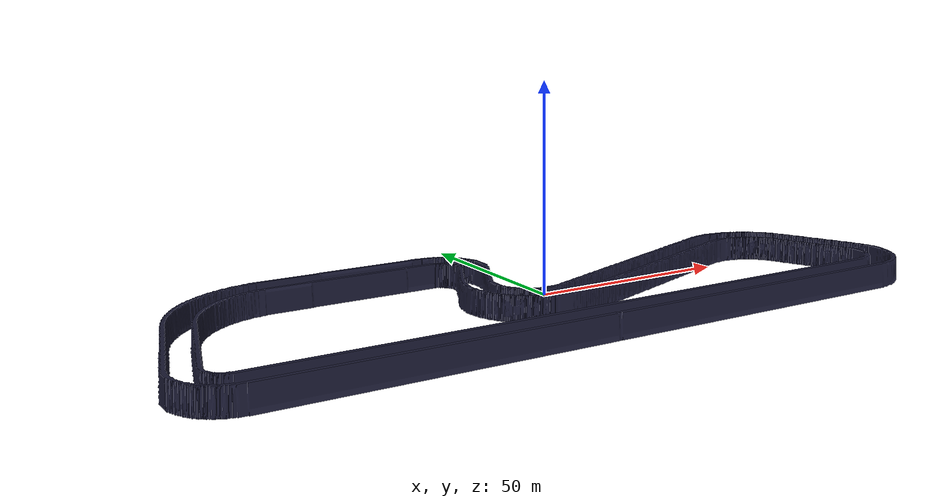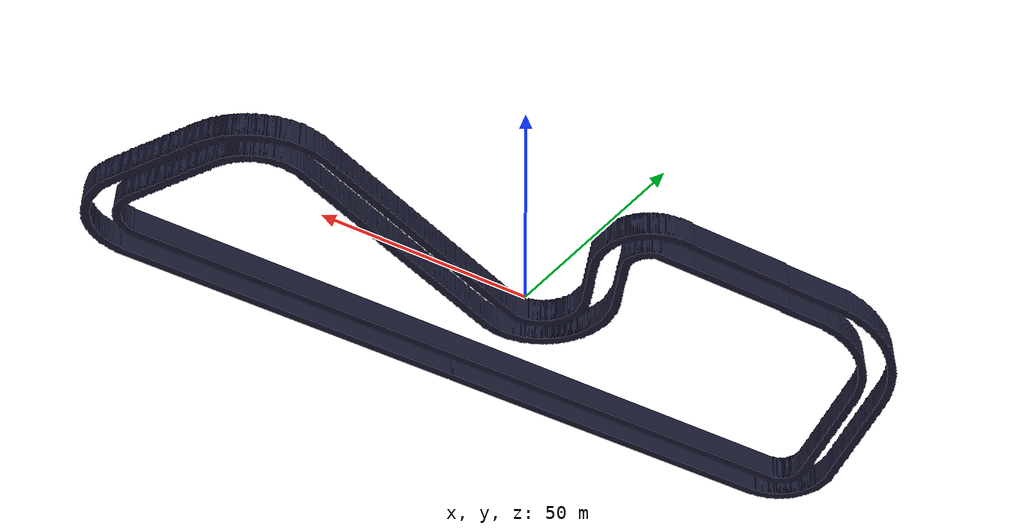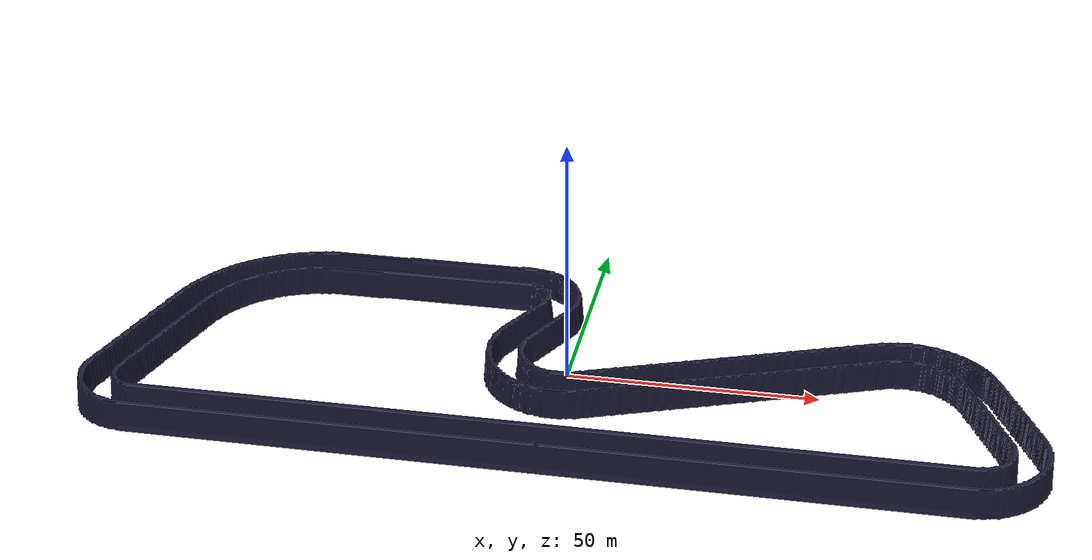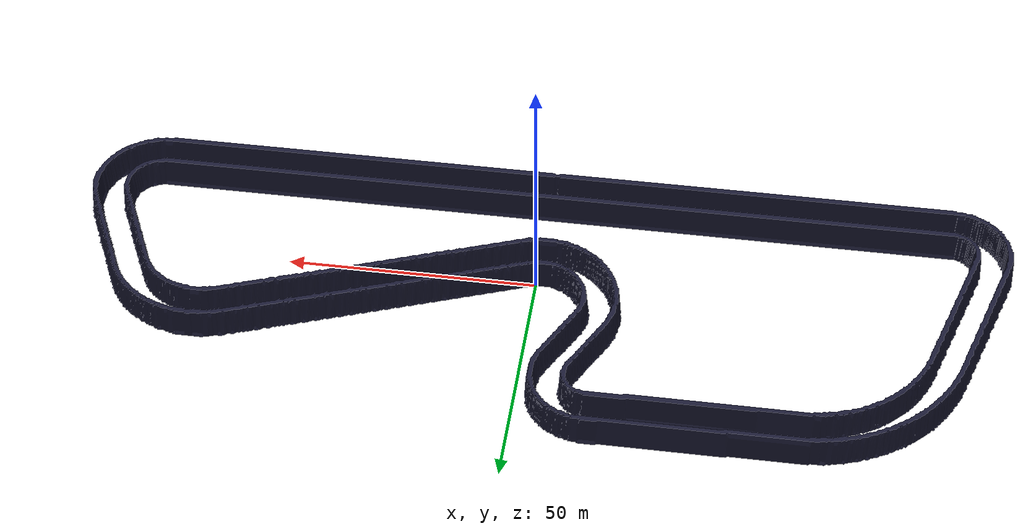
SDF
<?xml version="1.0" ?>
<sdf version="1.6">
  <model name="track">
    <link name="link">
          <inertial>
        <mass>1</mass>
        <inertia>
          <ixx>0.0</ixx>
          <ixy>0.0</ixy>
          <ixz>0.0</ixz>
          <iyy>0.0</iyy>
          <iyz>0.0</iyz>
          <izz>0.0</izz>
        </inertia>
      </inertial>
            <collision name="collision">
        <pose>0 0 0 0 0 0</pose>
        <geometry>
          <mesh>
            <uri>/home/parallels/ackerman/src/bridge2ros/bridge2ros/Models/track_borders.stl</uri>
            <scale>4 4 .5</scale>
          </mesh>
        </geometry>
      </collision>

    <visual name="visual">
        <pose>0 0 0 0 0 0</pose>
        <geometry>
          <mesh>
            <uri>/home/parallels/ackerman/src/bridge2ros/bridge2ros/Models/track_borders.stl</uri>
            <scale>2.5 2.5 .75</scale>
          </mesh>
        </geometry>

        <material> <!-- Wheel material -->
          <ambient>0.1 0.1 0.1 1</ambient>
          <diffuse>0.1 0.1 0.2 1</diffuse>
          <specular>0 0 0 0</specular>
          <emissive>0 0 0 1</emissive>
        </material> <!-- End wheel material -->

      </visual>

    </link>
    <static>1</static>
  </model>
</sdf>
